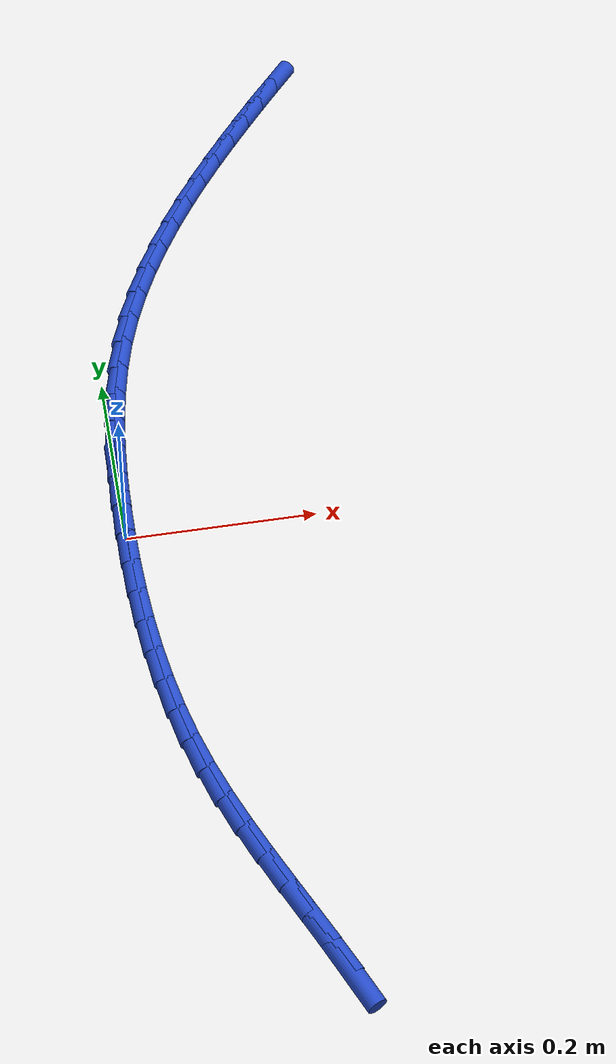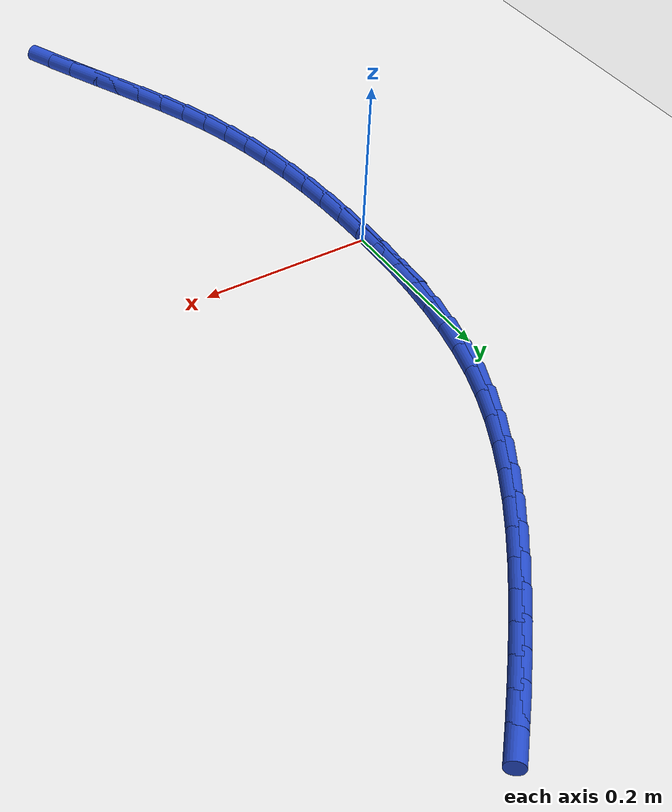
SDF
<sdf version="1.6">
 <world name="default">
  <model name="ground_plane">
   <static>1</static>
   <link name="link">
    <collision name="collision">
     <geometry><plane><normal>0 0 1</normal><size>100 100</size></plane></geometry>
     <surface><friction><ode><mu>100</mu><mu2>50</mu2></ode></friction></surface>
    </collision>
    <visual name="visual">
     <cast_shadows>0</cast_shadows>
     <geometry><plane><normal>0 0 1</normal><size>100 100</size></plane></geometry>
     <material>
      <script><uri>file://media/materials/scripts/gazebo.material</uri><name>Gazebo/WhiteGlow</name></script>
     </material>
    </visual>
   </link>
  </model>
  <model name="line">
   <link name="link_0">
    <pose>-1.5612511283791264e-17 2.7755575615628914e-17 0.01 0 1.57 1.5645337330616884</pose>
    <collision name="collision">
     <geometry><cylinder><radius>0.01</radius><length>0.08</length></cylinder></geometry>
    </collision>
    <visual name="visual">
     <material>
      <script><name>Gazebo/Blue</name><uri>file://media/materials/scripts/gazebo.material</uri></script>
     </material>
     <geometry><cylinder><radius>0.01</radius><length>0.08</length></cylinder></geometry>
    </visual>
   </link>
   <link name="link_1">
    <pose>0.00022578573816249044 0.03605259992825206 0.01 0 1.57 1.5355703420658693</pose>
    <collision name="collision">
     <geometry><cylinder><radius>0.01</radius><length>0.08</length></cylinder></geometry>
    </collision>
    <visual name="visual">
     <material>
      <script><name>Gazebo/Blue</name><uri>file://media/materials/scripts/gazebo.material</uri></script>
     </material>
     <geometry><cylinder><radius>0.01</radius><length>0.08</length></cylinder></geometry>
    </visual>
   </link>
   <link name="link_2">
    <pose>0.0014936014654703387 0.07202863567298269 0.01 0 1.57 1.5012585992267649</pose>
    <collision name="collision">
     <geometry><cylinder><radius>0.01</radius><length>0.08</length></cylinder></geometry>
    </collision>
    <visual name="visual">
     <material>
      <script><name>Gazebo/Blue</name><uri>file://media/materials/scripts/gazebo.material</uri></script>
     </material>
     <geometry><cylinder><radius>0.01</radius><length>0.08</length></cylinder></geometry>
    </visual>
   </link>
   <link name="link_3">
    <pose>0.003988078015885075 0.10784307287168178 0.01 0 1.57 1.461422653920047</pose>
    <collision name="collision">
     <geometry><cylinder><radius>0.01</radius><length>0.08</length></cylinder></geometry>
    </collision>
    <visual name="visual">
     <material>
      <script><name>Gazebo/Blue</name><uri>file://media/materials/scripts/gazebo.material</uri></script>
     </material>
     <geometry><cylinder><radius>0.01</radius><length>0.08</length></cylinder></geometry>
    </visual>
   </link>
   <link name="link_4">
    <pose>0.007893846223368237 0.14341087716183898 0.01 0 1.57 1.4159091741670913</pose>
    <collision name="collision">
     <geometry><cylinder><radius>0.01</radius><length>0.08</length></cylinder></geometry>
    </collision>
    <visual name="visual">
     <material>
      <script><name>Gazebo/Blue</name><uri>file://media/materials/scripts/gazebo.material</uri></script>
     </material>
     <geometry><cylinder><radius>0.01</radius><length>0.08</length></cylinder></geometry>
    </visual>
   </link>
   <link name="link_5">
    <pose>0.013395536921881373 0.17864701418094417 0.01 0 1.57 1.364624998116758</pose>
    <collision name="collision">
     <geometry><cylinder><radius>0.01</radius><length>0.08</length></cylinder></geometry>
    </collision>
    <visual name="visual">
     <material>
      <script><name>Gazebo/Blue</name><uri>file://media/materials/scripts/gazebo.material</uri></script>
     </material>
     <geometry><cylinder><radius>0.01</radius><length>0.08</length></cylinder></geometry>
    </visual>
   </link>
   <link name="link_6">
    <pose>0.020677780945386033 0.21346644956648717 0.01 0 1.57 1.307582954859293</pose>
    <collision name="collision">
     <geometry><cylinder><radius>0.01</radius><length>0.08</length></cylinder></geometry>
    </collision>
    <visual name="visual">
     <material>
      <script><name>Gazebo/Blue</name><uri>file://media/materials/scripts/gazebo.material</uri></script>
     </material>
     <geometry><cylinder><radius>0.01</radius><length>0.08</length></cylinder></geometry>
    </visual>
   </link>
   <link name="link_7">
    <pose>0.02992520912784375 0.2477841489559577 0.01 0 1.57 1.2450417041647597</pose>
    <collision name="collision">
     <geometry><cylinder><radius>0.01</radius><length>0.08</length></cylinder></geometry>
    </collision>
    <visual name="visual">
     <material>
      <script><name>Gazebo/Blue</name><uri>file://media/materials/scripts/gazebo.material</uri></script>
     </material>
     <geometry><cylinder><radius>0.01</radius><length>0.08</length></cylinder></geometry>
    </visual>
   </link>
   <link name="link_8">
    <pose>0.04131927675344389 0.281515538443933 0.01 0 1.57 1.1820307072586835</pose>
    <collision name="collision">
     <geometry><cylinder><radius>0.01</radius><length>0.08</length></cylinder></geometry>
    </collision>
    <visual name="visual">
     <material>
      <script><name>Gazebo/Blue</name><uri>file://media/materials/scripts/gazebo.material</uri></script>
     </material>
     <geometry><cylinder><radius>0.01</radius><length>0.08</length></cylinder></geometry>
    </visual>
   </link>
   <link name="link_9">
    <pose>0.054871380163051854 0.31460070279872115 0.01 0 1.57 1.1255457399564834</pose>
    <collision name="collision">
     <geometry><cylinder><radius>0.01</radius><length>0.08</length></cylinder></geometry>
    </collision>
    <visual name="visual">
     <material>
      <script><name>Gazebo/Blue</name><uri>file://media/materials/scripts/gazebo.material</uri></script>
     </material>
     <geometry><cylinder><radius>0.01</radius><length>0.08</length></cylinder></geometry>
    </visual>
   </link>
   <link name="link_10">
    <pose>0.07034046776354798 0.3470163319275095 0.01 0 1.57 1.0758424300745502</pose>
    <collision name="collision">
     <geometry><cylinder><radius>0.01</radius><length>0.08</length></cylinder></geometry>
    </collision>
    <visual name="visual">
     <material>
      <script><name>Gazebo/Blue</name><uri>file://media/materials/scripts/gazebo.material</uri></script>
     </material>
     <geometry><cylinder><radius>0.01</radius><length>0.08</length></cylinder></geometry>
    </visual>
   </link>
   <link name="link_11">
    <pose>0.08746502414975428 0.37874208300551093 0.01 0 1.57 1.0325324274114127</pose>
    <collision name="collision">
     <geometry><cylinder><radius>0.01</radius><length>0.08</length></cylinder></geometry>
    </collision>
    <visual name="visual">
     <material>
      <script><name>Gazebo/Blue</name><uri>file://media/materials/scripts/gazebo.material</uri></script>
     </material>
     <geometry><cylinder><radius>0.01</radius><length>0.08</length></cylinder></geometry>
    </visual>
   </link>
   <link name="link_12">
    <pose>0.10598353391649262 0.4097576132079371 0.01 0 1.57 0.9952172512010803</pose>
    <collision name="collision">
     <geometry><cylinder><radius>0.01</radius><length>0.08</length></cylinder></geometry>
    </collision>
    <visual name="visual">
     <material>
      <script><name>Gazebo/Blue</name><uri>file://media/materials/scripts/gazebo.material</uri></script>
     </material>
     <geometry><cylinder><radius>0.01</radius><length>0.08</length></cylinder></geometry>
    </visual>
   </link>
   <link name="link_13">
    <pose>0.1256344816585849 0.4400425797100004 0.01 0 1.57 0.9635321676041322</pose>
    <collision name="collision">
     <geometry><cylinder><radius>0.01</radius><length>0.08</length></cylinder></geometry>
    </collision>
    <visual name="visual">
     <material>
      <script><name>Gazebo/Blue</name><uri>file://media/materials/scripts/gazebo.material</uri></script>
     </material>
     <geometry><cylinder><radius>0.01</radius><length>0.08</length></cylinder></geometry>
    </visual>
   </link>
   <link name="link_14">
    <pose>0.1461563519708532 0.4695766396869135 0.01 0 1.57 0.9371764914527614</pose>
    <collision name="collision">
     <geometry><cylinder><radius>0.01</radius><length>0.08</length></cylinder></geometry>
    </collision>
    <visual name="visual">
     <material>
      <script><name>Gazebo/Blue</name><uri>file://media/materials/scripts/gazebo.material</uri></script>
     </material>
     <geometry><cylinder><radius>0.01</radius><length>0.08</length></cylinder></geometry>
    </visual>
   </link>
   <link name="link_15">
    <pose>0.16728762944811928 0.4983394503138884 0.01 0 1.57 0.9159357103882878</pose>
    <collision name="collision">
     <geometry><cylinder><radius>0.01</radius><length>0.08</length></cylinder></geometry>
    </collision>
    <visual name="visual">
     <material>
      <script><name>Gazebo/Blue</name><uri>file://media/materials/scripts/gazebo.material</uri></script>
     </material>
     <geometry><cylinder><radius>0.01</radius><length>0.08</length></cylinder></geometry>
    </visual>
   </link>
   <link name="link_16">
    <pose>0.1887667986852052 0.5263106687661376 0.01 0 1.57 0.899681232305515</pose>
    <collision name="collision">
     <geometry><cylinder><radius>0.01</radius><length>0.08</length></cylinder></geometry>
    </collision>
    <visual name="visual">
     <material>
      <script><name>Gazebo/Blue</name><uri>file://media/materials/scripts/gazebo.material</uri></script>
     </material>
     <geometry><cylinder><radius>0.01</radius><length>0.08</length></cylinder></geometry>
    </visual>
   </link>
   <link name="link_17">
    <pose>0.21033366279049745 0.553470544914475 0.01 0 1.57 0.8868387783180639</pose>
    <collision name="collision">
     <geometry><cylinder><radius>0.01</radius><length>0.08</length></cylinder></geometry>
    </collision>
    <visual name="visual">
     <material>
      <script><name>Gazebo/Blue</name><uri>file://media/materials/scripts/gazebo.material</uri></script>
     </material>
     <geometry><cylinder><radius>0.01</radius><length>0.08</length></cylinder></geometry>
    </visual>
   </link>
   <link name="link_18">
    <pose>0.23183788081390969 0.5798487108546236 0.01 0 1.57 0.8747858997987897</pose>
    <collision name="collision">
     <geometry><cylinder><radius>0.01</radius><length>0.08</length></cylinder></geometry>
    </collision>
    <visual name="visual">
     <material>
      <script><name>Gazebo/Blue</name><uri>file://media/materials/scripts/gazebo.material</uri></script>
     </material>
     <geometry><cylinder><radius>0.01</radius><length>0.08</length></cylinder></geometry>
    </visual>
   </link>
   <link name="link_19">
    <pose>0.2533199095660868 0.6055605657132145 0.01 0 1.57 0.8634197215823467</pose>
    <collision name="collision">
     <geometry><cylinder><radius>0.01</radius><length>0.08</length></cylinder></geometry>
    </collision>
    <visual name="visual">
     <material>
      <script><name>Gazebo/Blue</name><uri>file://media/materials/scripts/gazebo.material</uri></script>
     </material>
     <geometry><cylinder><radius>0.01</radius><length>0.08</length></cylinder></geometry>
    </visual>
   </link>
   <link name="link_215">
    <pose>0.1414148801280112 -0.5097100798811769 0.01 0 1.57 -1.1535452830425759</pose>
    <collision name="collision">
     <geometry><cylinder><radius>0.01</radius><length>0.08</length></cylinder></geometry>
    </collision>
    <visual name="visual">
     <material>
      <script><name>Gazebo/Blue</name><uri>file://media/materials/scripts/gazebo.material</uri></script>
     </material>
     <geometry><cylinder><radius>0.01</radius><length>0.08</length></cylinder></geometry>
    </visual>
   </link>
   <link name="link_216">
    <pose>0.1269621893311097 -0.47710605964275216 0.01 0 1.57 -1.1349043388884157</pose>
    <collision name="collision">
     <geometry><cylinder><radius>0.01</radius><length>0.08</length></cylinder></geometry>
    </collision>
    <visual name="visual">
     <material>
      <script><name>Gazebo/Blue</name><uri>file://media/materials/scripts/gazebo.material</uri></script>
     </material>
     <geometry><cylinder><radius>0.01</radius><length>0.08</length></cylinder></geometry>
    </visual>
   </link>
   <link name="link_217">
    <pose>0.11187876794753271 -0.4447223371812353 0.01 0 1.57 -1.1279685027916655</pose>
    <collision name="collision">
     <geometry><cylinder><radius>0.01</radius><length>0.08</length></cylinder></geometry>
    </collision>
    <visual name="visual">
     <material>
      <script><name>Gazebo/Blue</name><uri>file://media/materials/scripts/gazebo.material</uri></script>
     </material>
     <geometry><cylinder><radius>0.01</radius><length>0.08</length></cylinder></geometry>
    </visual>
   </link>
   <link name="link_218">
    <pose>0.09656371520118223 -0.4124284308021363 0.01 0 1.57 -1.1326942219871674</pose>
    <collision name="collision">
     <geometry><cylinder><radius>0.01</radius><length>0.08</length></cylinder></geometry>
    </collision>
    <visual name="visual">
     <material>
      <script><name>Gazebo/Blue</name><uri>file://media/materials/scripts/gazebo.material</uri></script>
     </material>
     <geometry><cylinder><radius>0.01</radius><length>0.08</length></cylinder></geometry>
    </visual>
   </link>
   <link name="link_219">
    <pose>0.08141613031595989 -0.3800938588109648 0.01 0 1.57 -1.1491340880312035</pose>
    <collision name="collision">
     <geometry><cylinder><radius>0.01</radius><length>0.08</length></cylinder></geometry>
    </collision>
    <visual name="visual">
     <material>
      <script><name>Gazebo/Blue</name><uri>file://media/materials/scripts/gazebo.material</uri></script>
     </material>
     <geometry><cylinder><radius>0.01</radius><length>0.08</length></cylinder></geometry>
    </visual>
   </link>
   <link name="link_220">
    <pose>0.06683511251576847 -0.34758813951323236 0.01 0 1.57 -1.1774183138776855</pose>
    <collision name="collision">
     <geometry><cylinder><radius>0.01</radius><length>0.08</length></cylinder></geometry>
    </collision>
    <visual name="visual">
     <material>
      <script><name>Gazebo/Blue</name><uri>file://media/materials/scripts/gazebo.material</uri></script>
     </material>
     <geometry><cylinder><radius>0.01</radius><length>0.08</length></cylinder></geometry>
    </visual>
   </link>
   <link name="link_221">
    <pose>0.05321976102450966 -0.3147807912144487 0.01 0 1.57 -1.2176875508502691</pose>
    <collision name="collision">
     <geometry><cylinder><radius>0.01</radius><length>0.08</length></cylinder></geometry>
    </collision>
    <visual name="visual">
     <material>
      <script><name>Gazebo/Blue</name><uri>file://media/materials/scripts/gazebo.material</uri></script>
     </material>
     <geometry><cylinder><radius>0.01</radius><length>0.08</length></cylinder></geometry>
    </visual>
   </link>
   <link name="link_222">
    <pose>0.04096917506608545 -0.2815413322201238 0.01 0 1.57 -1.2692289506393313</pose>
    <collision name="collision">
     <geometry><cylinder><radius>0.01</radius><length>0.08</length></cylinder></geometry>
    </collision>
    <visual name="visual">
     <material>
      <script><name>Gazebo/Blue</name><uri>file://media/materials/scripts/gazebo.material</uri></script>
     </material>
     <geometry><cylinder><radius>0.01</radius><length>0.08</length></cylinder></geometry>
    </visual>
   </link>
   <link name="link_223">
    <pose>0.030457876959512284 -0.24774886141964092 0.01 0 1.57 -1.3227065803778009</pose>
    <collision name="collision">
     <geometry><cylinder><radius>0.01</radius><length>0.08</length></cylinder></geometry>
    </collision>
    <visual name="visual">
     <material>
      <script><name>Gazebo/Blue</name><uri>file://media/materials/scripts/gazebo.material</uri></script>
     </material>
     <geometry><cylinder><radius>0.01</radius><length>0.08</length></cylinder></geometry>
    </visual>
   </link>
   <link name="link_224">
    <pose>0.021757200700716378 -0.2134006667572139 0.01 0 1.57 -1.3718121732567612</pose>
    <collision name="collision">
     <geometry><cylinder><radius>0.01</radius><length>0.08</length></cylinder></geometry>
    </collision>
    <visual name="visual">
     <material>
      <script><name>Gazebo/Blue</name><uri>file://media/materials/scripts/gazebo.material</uri></script>
     </material>
     <geometry><cylinder><radius>0.01</radius><length>0.08</length></cylinder></geometry>
    </visual>
   </link>
   <link name="link_225">
    <pose>0.014734240603249283 -0.17857365301312433 0.01 0 1.57 -1.4164182599299877</pose>
    <collision name="collision">
     <geometry><cylinder><radius>0.01</radius><length>0.08</length></cylinder></geometry>
    </collision>
    <visual name="visual">
     <material>
      <script><name>Gazebo/Blue</name><uri>file://media/materials/scripts/gazebo.material</uri></script>
     </material>
     <geometry><cylinder><radius>0.01</radius><length>0.08</length></cylinder></geometry>
    </visual>
   </link>
   <link name="link_226">
    <pose>0.009252277166086823 -0.14334621167115105 0.01 0 1.57 -1.4565909183656065</pose>
    <collision name="collision">
     <geometry><cylinder><radius>0.01</radius><length>0.08</length></cylinder></geometry>
    </collision>
    <visual name="visual">
     <material>
      <script><name>Gazebo/Blue</name><uri>file://media/materials/scripts/gazebo.material</uri></script>
     </material>
     <geometry><cylinder><radius>0.01</radius><length>0.08</length></cylinder></geometry>
    </visual>
   </link>
   <link name="link_227">
    <pose>0.005174590888204832 -0.10779673421507313 0.01 0 1.57 -1.4924467455594403</pose>
    <collision name="collision">
     <geometry><cylinder><radius>0.01</radius><length>0.08</length></cylinder></geometry>
    </collision>
    <visual name="visual">
     <material>
      <script><name>Gazebo/Blue</name><uri>file://media/materials/scripts/gazebo.material</uri></script>
     </material>
     <geometry><cylinder><radius>0.01</radius><length>0.08</length></cylinder></geometry>
    </visual>
   </link>
   <link name="link_228">
    <pose>0.002364462268579087 -0.07200361212866854 0.01 0 1.57 -1.5241292787404737</pose>
    <collision name="collision">
     <geometry><cylinder><radius>0.01</radius><length>0.08</length></cylinder></geometry>
    </collision>
    <visual name="visual">
     <material>
      <script><name>Gazebo/Blue</name><uri>file://media/materials/scripts/gazebo.material</uri></script>
     </material>
     <geometry><cylinder><radius>0.01</radius><length>0.08</length></cylinder></geometry>
    </visual>
   </link>
   <link name="link_229">
    <pose>0.0006851718061855572 -0.036045236895718126 0.01 0 1.57 -1.5517899515050402</pose>
    <collision name="collision">
     <geometry><cylinder><radius>0.01</radius><length>0.08</length></cylinder></geometry>
    </collision>
    <visual name="visual">
     <material>
      <script><name>Gazebo/Blue</name><uri>file://media/materials/scripts/gazebo.material</uri></script>
     </material>
     <geometry><cylinder><radius>0.01</radius><length>0.08</length></cylinder></geometry>
    </visual>
   </link>
   <link name="link_230">
    <pose>-1.5178830414797062e-17 9.020562075079397e-17 0.01 0 1.57 1.5660193966829055</pose>
    <collision name="collision">
     <geometry><cylinder><radius>0.01</radius><length>0.08</length></cylinder></geometry>
    </collision>
    <visual name="visual">
     <material>
      <script><name>Gazebo/Blue</name><uri>file://media/materials/scripts/gazebo.material</uri></script>
     </material>
     <geometry><cylinder><radius>0.01</radius><length>0.08</length></cylinder></geometry>
    </visual>
   </link>
   <link name="link_231">
    <pose>0.0001722273489982028 0.03605370707470713 0.01 0 1.57 1.545987269466345</pose>
    <collision name="collision">
     <geometry><cylinder><radius>0.01</radius><length>0.08</length></cylinder></geometry>
    </collision>
    <visual name="visual">
     <material>
      <script><name>Gazebo/Blue</name><uri>file://media/materials/scripts/gazebo.material</uri></script>
     </material>
     <geometry><cylinder><radius>0.01</radius><length>0.08</length></cylinder></geometry>
    </visual>
   </link>
   <link name="link_232">
    <pose>0.001065134352156041 0.07203749284462402 0.01 0 1.57 1.5560115709673135</pose>
    <collision name="collision">
     <geometry><cylinder><radius>0.01</radius><length>0.08</length></cylinder></geometry>
    </collision>
    <visual name="visual">
     <material>
      <script><name>Gazebo/Blue</name><uri>file://media/materials/scripts/gazebo.material</uri></script>
     </material>
     <geometry><cylinder><radius>0.01</radius><length>0.08</length></cylinder></geometry>
    </visual>
   </link>
  </model>
 </world>
</sdf>
